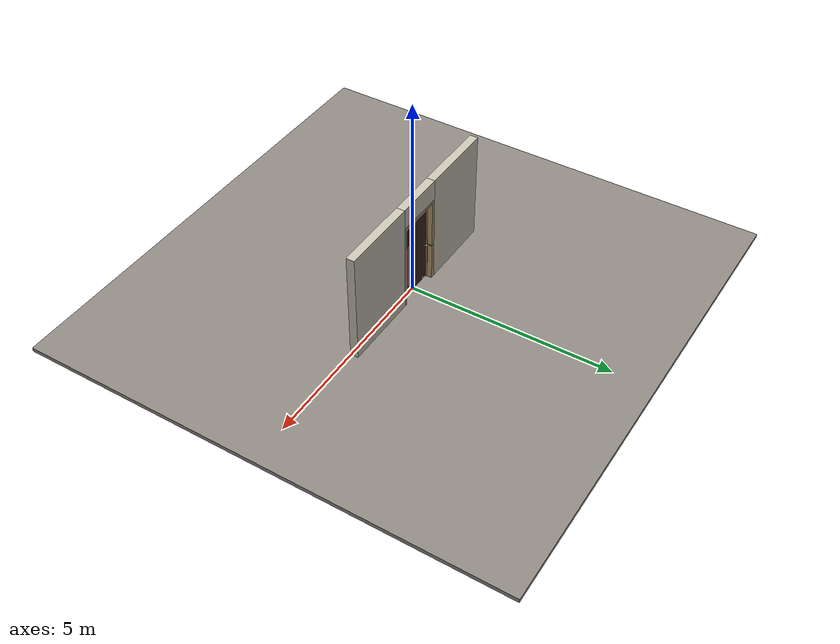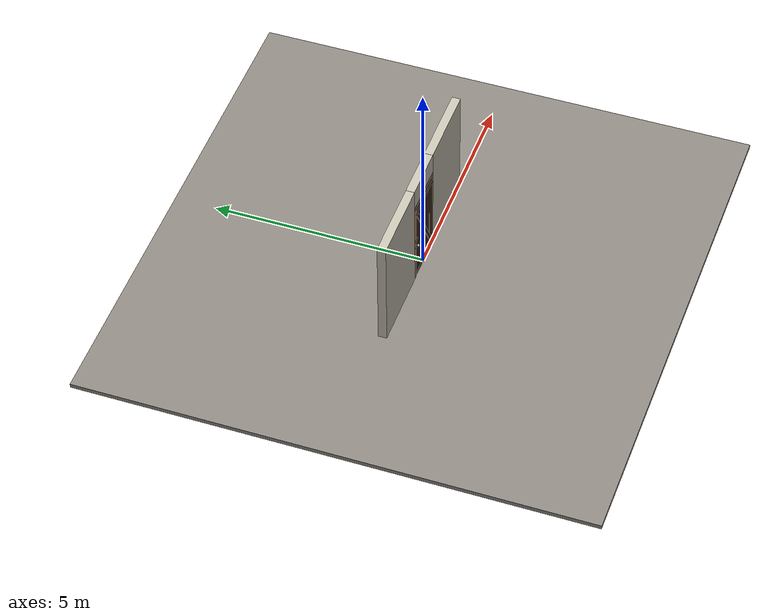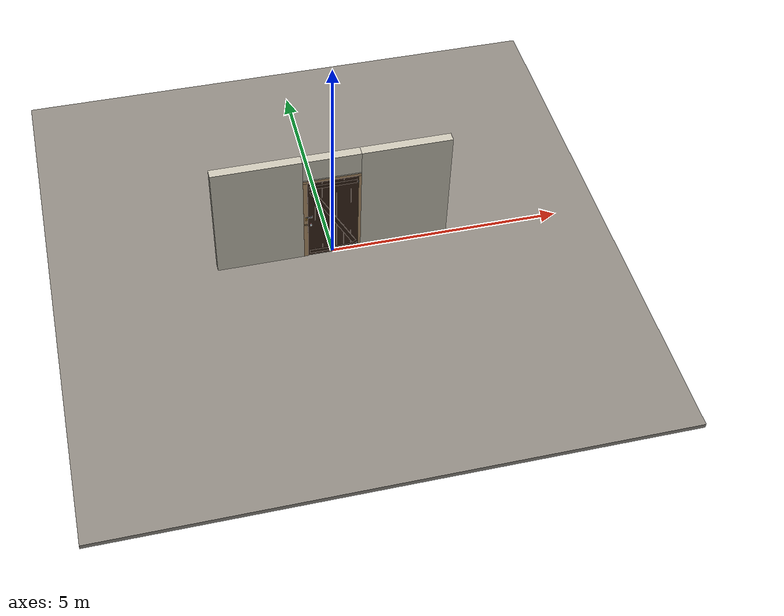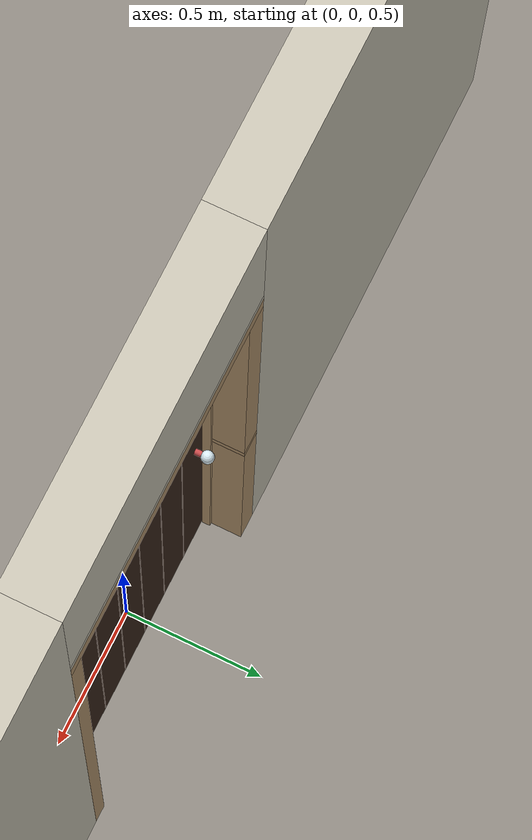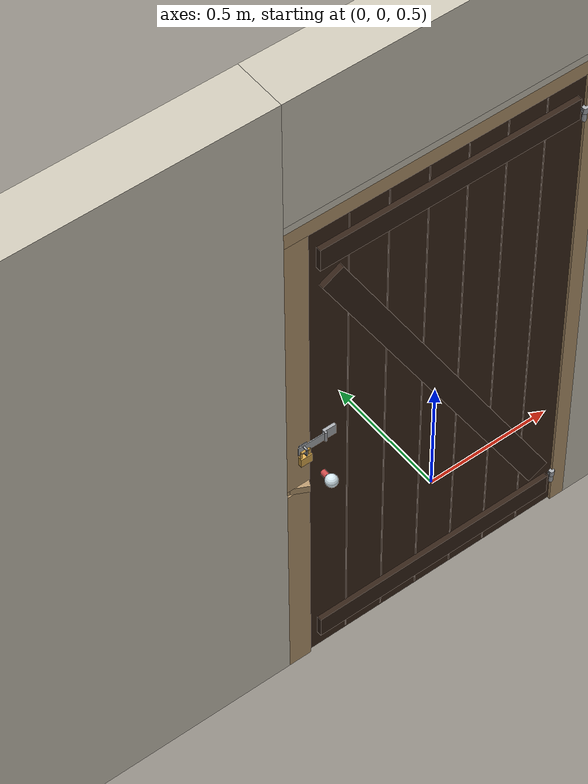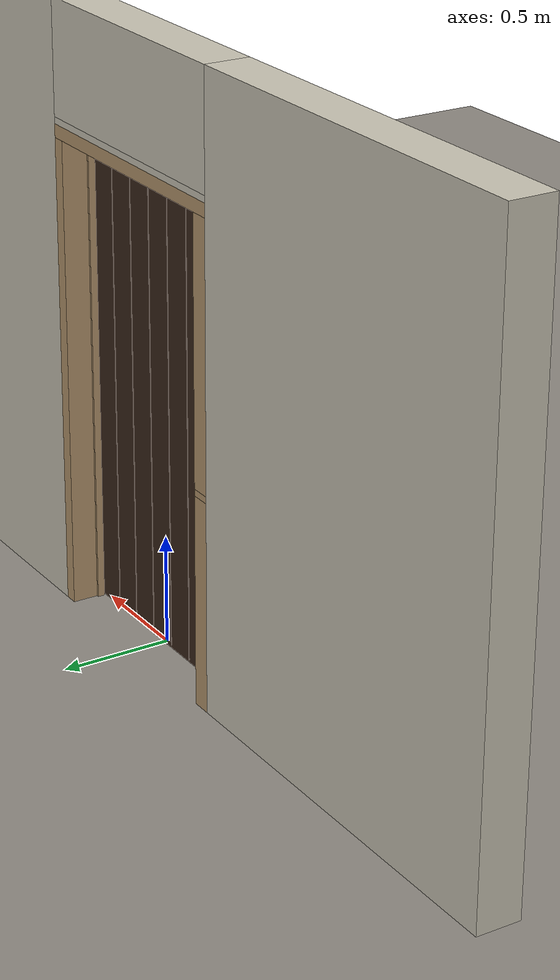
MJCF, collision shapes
<?xml version="1.0" ?>
<mujoco model="db0311_swing_single_full">
  <compiler angle="radian" meshdir="../../hardware" texturedir="../../textures" autolimits="true" inertiafromgeom="false"/>
  <option timestep="0.002" integrator="implicitfast" cone="elliptic" impratio="10" noslip_iterations="3">
    <flag multiccd="enable"/>
  </option>
  <size memory="16M"/>
  <default>
    <geom condim="4" solref="0.005 1" solimp="0.95 0.99 0.001"/>
    <joint solreflimit="0.005 1" solimplimit="0.95 0.99 0.001"/>
    <tendon solreflimit="0.005 1"/>
    <equality solref="0.002 1"/>
  </default>
  <visual>
    <headlight ambient="0.4 0.4 0.4" diffuse="0.7 0.7 0.7" specular="0.2 0.2 0.2"/>
    <quality shadowsize="4096"/>
    <map znear="0.01" zfar="60"/>
  </visual>
  <asset>
    <mesh name="knob_98a7916ed0" file="knob_98a7916ed0.obj"/>
    <mesh name="strap_hinge_78d1bbb966" file="strap_hinge_78d1bbb966.obj"/>
    <material name="mat_floor" rgba="0.55 0.53 0.5 1" specular="0.2" shininess="0.15" reflectance="0"/>
    <material name="mat_wall" rgba="0.78 0.76 0.7 1" specular="0.2" shininess="0.1" reflectance="0"/>
    <material name="mat_leaf" rgba="0.217 0.143 0.098 1" specular="0.2" shininess="0.55" reflectance="0"/>
    <material name="mat_leaf_brace" rgba="0.195 0.129 0.088 1" specular="0.2" shininess="0.2" reflectance="0"/>
    <material name="mat_hinge" rgba="0.65 0.66 0.68 1" specular="0.74" shininess="0.5" reflectance="0.36"/>
    <material name="mat_op_glass_clear" rgba="0.85 0.92 0.95 0.25" specular="0.2" shininess="0.95" reflectance="0.1"/>
    <material name="mat_trim" rgba="0.85 0.66 0.3 1" specular="0.8" shininess="0.75" reflectance="0.4"/>
    <material name="mat_bolt" rgba="0.75 0.76 0.77 1" specular="0.8" shininess="0.65" reflectance="0.4"/>
    <material name="mat_op_steel_galvanized" rgba="0.65 0.66 0.68 1" specular="0.74" shininess="0.5" reflectance="0.36"/>
    <material name="mat_padlock" rgba="0.85 0.66 0.3 1" specular="0.8" shininess="0.75" reflectance="0.4"/>
    <material name="mat_frame" rgba="0.7 0.58 0.42 1" specular="0.2" shininess="0.5" reflectance="0"/>
    <texture name="skybox" type="skybox" builtin="gradient" rgb1="0.6 0.7 0.85" rgb2="0.9 0.92 0.95" width="256" height="256"/>
  </asset>
  <worldbody>
    <light name="sun" pos="1.5 -2.5 4" dir="-0.3 0.5 -0.8" directional="true" diffuse="0.8 0.8 0.8" specular="0.3 0.3 0.3" castshadow="true"/>
    <light name="fill" pos="-1.5 2.5 3" dir="0.3 -0.5 -0.7" directional="true" diffuse="0.35 0.35 0.4" castshadow="false"/>
    <camera name="robot_view" pos="0 -2.566812 1.812087" xyaxes="1 0 0 0 0.26963 0.962964" fovy="52"/>
    <camera name="far_view" pos="0 2.708813 1.812087" xyaxes="-1 0 0 0 -0.26963 0.962964" fovy="52"/>
    <camera name="iso" pos="-2.004737 -2.144762 2.234138" xyaxes="0.741536 -0.670913 0 0.242917 0.268487 0.932151" fovy="46"/>
    <camera name="detail_handle" pos="-0.298 -0.867 1.245" xyaxes="0.97561 0.219512 0 -0.070934 0.315262 0.94635" fovy="38"/>
    <geom name="floor" type="box" size="6 6 0.05" pos="0 0 -0.05" material="mat_floor" group="0" contype="1" conaffinity="1" friction="0.8 0.005 0.0001" density="2400"/>
    <geom name="wall_left" type="box" size="0.9365 0.1 1.3735" pos="-1.5635 0.071 1.3735" material="mat_wall" group="0" contype="1" conaffinity="1" friction="0.6 0.005 0.0001" density="800"/>
    <geom name="wall_right" type="box" size="0.9515 0.1 1.3735" pos="1.5485 0.071 1.3735" material="mat_wall" group="0" contype="1" conaffinity="1" friction="0.6 0.005 0.0001" density="800"/>
    <geom name="wall_header" type="box" size="0.612 0.1 0.255" pos="-0.015 0.071 2.492" material="mat_wall" group="0" contype="1" conaffinity="1" friction="0.6 0.005 0.0001" density="800"/>
    <geom name="hinge_pintle_0" type="cylinder" size="0.008 0.02" pos="0.534 -0.029 0.133" material="mat_hinge" group="1" contype="0" conaffinity="0" density="7850"/>
    <geom name="hinge_pintle_1" type="cylinder" size="0.008 0.02" pos="0.534 -0.029 1.967" material="mat_hinge" group="1" contype="0" conaffinity="0" density="7850"/>
    <geom name="leaf_staple_leg_n" type="box" size="0.003 0.0025 0.013" pos="-0.565 -0.042 1.1775" quat="0 0 -0.707107 0.707107" material="mat_op_steel_galvanized" group="0" contype="1" conaffinity="1" friction="0.6 0.005 0.0001" density="7800"/>
    <geom name="leaf_staple_leg_p" type="box" size="0.003 0.0025 0.013" pos="-0.565 -0.042 1.1525" quat="0 0 -0.707107 0.707107" material="mat_op_steel_galvanized" group="0" contype="1" conaffinity="1" friction="0.6 0.005 0.0001" density="7800"/>
    <geom name="leaf_staple_bridge" type="box" size="0.003 0.015 0.0025" pos="-0.565 -0.0525 1.165" quat="0 0 -0.707107 0.707107" material="mat_op_steel_galvanized" group="0" contype="1" conaffinity="1" friction="0.6 0.005 0.0001" density="7800"/>
    <geom name="leaf_staple_base" type="box" size="0.016 0.021 0.001" pos="-0.565 -0.03 1.165" quat="0 0 -0.707107 0.707107" material="mat_op_steel_galvanized" group="1" contype="0" conaffinity="0" density="7800"/>
    <geom name="leaf_padlock_shackle" type="capsule" size="0.004 0.016" pos="-0.565 -0.044 1.165" quat="0.707107 0 -0.707107 0" material="mat_padlock" group="1" contype="0" conaffinity="0" density="7850"/>
    <geom name="leaf_padlock_leg_a" type="capsule" size="0.004 0.012" pos="-0.549 -0.044 1.153" quat="0 1 0 0" material="mat_padlock" group="1" contype="0" conaffinity="0" density="7850"/>
    <geom name="leaf_padlock_leg_b" type="capsule" size="0.004 0.012" pos="-0.581 -0.044 1.153" quat="0 1 0 0" material="mat_padlock" group="1" contype="0" conaffinity="0" density="7850"/>
    <geom name="leaf_padlock_body" type="box" size="0.022 0.018 0.008" pos="-0.565 -0.044 1.123" quat="0 0 -0.707107 0.707107" material="mat_padlock" group="0" contype="1" conaffinity="1" friction="0.6 0.005 0.0001" density="7850"/>
    <geom name="jamb_hinge" type="box" size="0.03 0.1 1.0735" pos="0.567 0.071 1.0735" material="mat_frame" group="0" contype="1" conaffinity="1" friction="0.6 0.005 0.0001" density="750"/>
    <geom name="strike_965_wall_n" type="box" size="0.045 0.08225 0.015" pos="-0.582 0.08875 0.965" material="mat_frame" group="0" contype="1" conaffinity="1" friction="0.6 0.005 0.0001" density="750"/>
    <geom name="strike_965_wall_p" type="box" size="0.045 0.008 0.015" pos="-0.582 -0.0145 0.965" material="mat_frame" group="0" contype="1" conaffinity="1" friction="0.6 0.005 0.0001" density="750"/>
    <geom name="strike_965_ramp" type="box" size="0.045 0.016771 0.015" pos="-0.584749 -0.017375 0.965" quat="0.973249 0 0 -0.229753" material="mat_frame" group="0" contype="1" conaffinity="1" friction="0.12 0.005 0.0001" density="750"/>
    <geom name="strike_965_back" type="box" size="0.036 0.0065 0.015" pos="-0.591 0 0.965" material="mat_frame" group="0" contype="1" conaffinity="1" friction="0.6 0.005 0.0001" density="750"/>
    <geom name="jamb_strike_0" type="box" size="0.045 0.1 0.475" pos="-0.582 0.071 0.475" material="mat_frame" group="0" contype="1" conaffinity="1" friction="0.6 0.005 0.0001" density="750"/>
    <geom name="jamb_strike_1" type="box" size="0.045 0.1 0.5835" pos="-0.582 0.071 1.5635" material="mat_frame" group="0" contype="1" conaffinity="1" friction="0.6 0.005 0.0001" density="750"/>
    <geom name="jamb_head" type="box" size="0.612 0.1 0.03" pos="-0.015 0.071 2.177" material="mat_frame" group="0" contype="1" conaffinity="1" friction="0.6 0.005 0.0001" density="750"/>
    <geom name="head_stud" type="box" size="0.612 0.1 0.015" pos="-0.015 0.071 2.222" material="mat_wall" group="0" contype="1" conaffinity="1" friction="0.6 0.005 0.0001" density="500"/>
    <geom name="stop_hinge" type="box" size="0.0055 0.016 1.0735" pos="0.5315 0.0385 1.0735" material="mat_frame" group="0" contype="1" conaffinity="1" friction="0.6 0.005 0.0001" density="750"/>
    <geom name="stop_strike" type="box" size="0.0055 0.016 1.0735" pos="-0.5315 0.0385 1.0735" material="mat_frame" group="0" contype="1" conaffinity="1" friction="0.6 0.005 0.0001" density="750"/>
    <geom name="stop_head" type="box" size="0.537 0.016 0.0055" pos="0 0.0385 2.1415" material="mat_frame" group="0" contype="1" conaffinity="1" friction="0.6 0.005 0.0001" density="750"/>
    <geom name="hinge_pintle_0_strap_0" type="box" size="0.0064 0.02225 0.016" pos="0.534 0.00075 0.133" material="mat_hinge" group="1" contype="0" conaffinity="0" density="7850"/>
    <geom name="hinge_pintle_1_strap_0" type="box" size="0.0064 0.02225 0.016" pos="0.534 0.00075 1.967" material="mat_hinge" group="1" contype="0" conaffinity="0" density="7850"/>
    <site name="approach_point" pos="0 -1.5 0" quat="1 0 0 0" size="0.05" rgba="0.2 0.9 0.2 0.5" group="4"/>
    <site name="goal_point" pos="0 1.5 0" quat="1 0 0 0" size="0.05" rgba="0.2 0.9 0.2 0.5" group="4"/>
    <site name="door_plane_center" pos="0 0 1.0735" quat="1 0 0 0" size="0.02" rgba="0.2 0.9 0.2 0.5" group="4"/>
    <body name="leaf" pos="0.537 0 0">
      <inertial pos="-0.525576 -0.000872 1.076229" mass="62.654397" quat="0.50059 0.499217 -0.50079 0.4994" diaginertia="6.108837277 24.623196805 30.709812877"/>
      <joint name="leaf_hinge" type="hinge" axis="0 0 1" pos="-0.003 -0.029 0" limited="true" range="0 0.0015" damping="0.54954" frictionloss="3.674875" armature="0.02"/>
      <geom name="leaf_slab" type="box" size="0.5335 0.022 1.067" pos="-0.5365 0 1.076" material="mat_leaf" group="0" contype="1" conaffinity="1" friction="0.35 0.005 0.0001" density="1"/>
      <geom name="leaf_plank_gap_1" type="box" size="0.002 0.023 1.057" pos="-0.155429 0 1.076" material="mat_leaf_brace" group="1" contype="0" conaffinity="0" density="1"/>
      <geom name="leaf_plank_gap_2" type="box" size="0.002 0.023 1.057" pos="-0.307857 0 1.076" material="mat_leaf_brace" group="1" contype="0" conaffinity="0" density="1"/>
      <geom name="leaf_plank_gap_3" type="box" size="0.002 0.023 1.057" pos="-0.460286 0 1.076" material="mat_leaf_brace" group="1" contype="0" conaffinity="0" density="1"/>
      <geom name="leaf_plank_gap_4" type="box" size="0.002 0.023 1.057" pos="-0.612714 0 1.076" material="mat_leaf_brace" group="1" contype="0" conaffinity="0" density="1"/>
      <geom name="leaf_plank_gap_5" type="box" size="0.002 0.023 1.057" pos="-0.765143 0 1.076" material="mat_leaf_brace" group="1" contype="0" conaffinity="0" density="1"/>
      <geom name="leaf_plank_gap_6" type="box" size="0.002 0.023 1.057" pos="-0.917571 0 1.076" material="mat_leaf_brace" group="1" contype="0" conaffinity="0" density="1"/>
      <geom name="leaf_batten_12" type="box" size="0.5035 0.01 0.045" pos="-0.5365 -0.032 0.129" material="mat_leaf_brace" group="1" contype="0" conaffinity="0" density="1"/>
      <geom name="leaf_batten_202" type="box" size="0.5035 0.01 0.045" pos="-0.5365 -0.032 2.023" material="mat_leaf_brace" group="1" contype="0" conaffinity="0" density="1"/>
      <geom name="leaf_brace_z" type="box" size="0.954611 0.01 0.045" pos="-0.5365 -0.032 1.076" quat="0.859226 0 0.511597 0" material="mat_leaf_brace" group="1" contype="0" conaffinity="0" density="1"/>
      <geom name="hinge_strap_0" type="mesh" mesh="strap_hinge_78d1bbb966" pos="-0.003 -0.025 0.159" quat="0 0 0 1" material="mat_hinge" group="1" contype="0" conaffinity="0" density="7850"/>
      <geom name="hinge_strap_eye_0" type="cylinder" size="0.011 0.012" pos="-0.003 -0.029 0.159" material="mat_hinge" group="1" contype="0" conaffinity="0" density="7850"/>
      <geom name="hinge_strap_neck_0" type="box" size="0.012 0.006 0.006" pos="-0.003 -0.027 0.159" material="mat_hinge" group="1" contype="0" conaffinity="0" density="7850"/>
      <geom name="hinge_strap_1" type="mesh" mesh="strap_hinge_78d1bbb966" pos="-0.003 -0.025 1.993" quat="0 0 0 1" material="mat_hinge" group="1" contype="0" conaffinity="0" density="7850"/>
      <geom name="hinge_strap_eye_1" type="cylinder" size="0.011 0.012" pos="-0.003 -0.029 1.993" material="mat_hinge" group="1" contype="0" conaffinity="0" density="7850"/>
      <geom name="hinge_strap_neck_1" type="box" size="0.012 0.006 0.006" pos="-0.003 -0.027 1.993" material="mat_hinge" group="1" contype="0" conaffinity="0" density="7850"/>
      <geom name="leaf_latch_bolt_faceplate" type="box" size="0.0006 0.011 0.025" pos="-1.0694 0 0.965" material="mat_bolt" group="1" contype="0" conaffinity="0" density="8500"/>
      <geom name="leaf_hasp_plate" type="box" size="0.024 0.0215 0.0055" pos="-0.995 -0.0275 1.165" quat="0 0 -0.707107 0.707107" material="mat_op_steel_galvanized" group="1" contype="0" conaffinity="0" density="7800"/>
      <site name="leaf_edge_mid" pos="-1.07 0 1.067" quat="1 0 0 0" size="0.02" rgba="0.2 0.9 0.2 0.5" group="4"/>
      <body name="leaf_handle" pos="-1.015 0 0.965">
        <inertial pos="0 0 0" mass="0.971799" quat="0.5 0.5 0.5 0.5" diaginertia="0.000215316 0.003456691 0.003456691"/>
        <joint name="leaf_handle_hinge" type="hinge" axis="0 1 0" limited="true" range="0 0.8" damping="0.119589" frictionloss="0.032" stiffness="0.35" springref="-0.428571" armature="0.01"/>
        <geom name="leaf_handle_spindle" type="cylinder" size="0.006 0.03" pos="0 0 0" quat="0.707107 -0.707107 0 0" material="mat_op_glass_clear" group="1" contype="0" conaffinity="0" density="7850"/>
        <geom name="leaf_handle_knob_n" type="mesh" mesh="knob_98a7916ed0" pos="0 -0.022 0" quat="0 0 -0.707107 0.707107" material="mat_op_glass_clear" group="1" contype="0" conaffinity="0" density="3000"/>
        <geom name="leaf_handle_knob_col_n" type="sphere" size="0.0234" pos="0 -0.067 0" material="mat_op_glass_clear" group="0" contype="1" conaffinity="1" friction="0.9 0.01 0.0001" density="3000"/>
        <geom name="leaf_handle_knob_neck_n" type="cylinder" size="0.011 0.012" pos="0 -0.034 0" quat="0.707107 -0.707107 0 0" material="mat_op_glass_clear" group="3" contype="1" conaffinity="1" rgba="0.8 0.3 0.3 0.25" friction="0.6 0.005 0.0001" density="3000"/>
        <geom name="leaf_handle_knob_p" type="mesh" mesh="knob_98a7916ed0" pos="0 0.022 0" quat="0 0 0.707107 0.707107" material="mat_op_glass_clear" group="1" contype="0" conaffinity="0" density="3000"/>
        <geom name="leaf_handle_knob_col_p" type="sphere" size="0.0234" pos="0 0.067 0" material="mat_op_glass_clear" group="0" contype="1" conaffinity="1" friction="0.9 0.01 0.0001" density="3000"/>
        <geom name="leaf_handle_knob_neck_p" type="cylinder" size="0.011 0.012" pos="0 0.034 0" quat="0.707107 -0.707107 0 0" material="mat_op_glass_clear" group="3" contype="1" conaffinity="1" rgba="0.8 0.3 0.3 0.25" friction="0.6 0.005 0.0001" density="3000"/>
        <site name="leaf_handle_grip_n" pos="0 -0.067 0" quat="1 0 0 0" size="0.012" rgba="0.2 0.9 0.2 0.5" group="4"/>
        <site name="leaf_handle_grip_p" pos="0 0.067 0" quat="1 0 0 0" size="0.012" rgba="0.2 0.9 0.2 0.5" group="4"/>
      </body>
      <body name="leaf_latch_bolt" pos="-1.07 0 0.965">
        <inertial pos="0.008 0 0" mass="0.027149" quat="0 0 -0.707107 0.707107" diaginertia="0.000000328 0.000003943 0.000003943"/>
        <joint name="leaf_latch_bolt_slide" type="slide" axis="1 0 0" limited="true" range="0 0.014" damping="2" frictionloss="0.3" stiffness="400" springref="-0.01" armature="0.1"/>
        <geom name="leaf_latch_bolt_capsule" type="capsule" size="0.005 0.017" pos="0.008 0 0" quat="0.707107 0 -0.707107 0" material="mat_bolt" group="0" contype="1" conaffinity="1" friction="0.2 0.005 0.0001" density="8500"/>
      </body>
      <body name="leaf_hasp" pos="-1.015 -0.033 1.165">
        <inertial pos="-0.043932 -0.001985 0" mass="0.110745" quat="0.00597 0.00597 0.707082 0.707082" diaginertia="0.000012666 0.000140194 0.000152371"/>
        <joint name="leaf_hasp_hinge" type="hinge" axis="0 0 1" limited="true" range="0 0.0015" damping="0.02" frictionloss="0.05" armature="0.005"/>
        <geom name="leaf_hasp_strap" type="box" size="0.0545 0.0175 0.0015" pos="-0.0545 -0.0015 0" quat="0 0 -0.707107 0.707107" material="mat_op_steel_galvanized" group="0" contype="1" conaffinity="1" friction="0.6 0.005 0.0001" density="7800"/>
        <geom name="leaf_hasp_knuckle" type="cylinder" size="0.0045 0.0215" pos="0 -0.004 0" material="mat_op_steel_galvanized" group="1" contype="0" conaffinity="0" density="7850"/>
        <site name="leaf_hasp_grip" pos="-0.089 -0.01 0" quat="1 0 0 0" size="0.01" rgba="0.2 0.9 0.2 0.5" group="4"/>
      </body>
    </body>
  </worldbody>
  <tendon>
    <fixed name="leaf_latch_bolt_coupling" limited="true" range="0 10">
      <joint joint="leaf_latch_bolt_slide" coef="1"/>
      <joint joint="leaf_handle_hinge" coef="-0.021538"/>
    </fixed>
  </tendon>
  <sensor>
    <jointpos name="leaf_hinge_pos" joint="leaf_hinge"/>
    <jointvel name="leaf_hinge_vel" joint="leaf_hinge"/>
    <jointpos name="leaf_handle_hinge_pos" joint="leaf_handle_hinge"/>
    <jointvel name="leaf_handle_hinge_vel" joint="leaf_handle_hinge"/>
    <jointpos name="leaf_latch_bolt_slide_pos" joint="leaf_latch_bolt_slide"/>
    <jointvel name="leaf_latch_bolt_slide_vel" joint="leaf_latch_bolt_slide"/>
    <jointpos name="leaf_hasp_hinge_pos" joint="leaf_hasp_hinge"/>
    <jointvel name="leaf_hasp_hinge_vel" joint="leaf_hasp_hinge"/>
  </sensor>
</mujoco>
